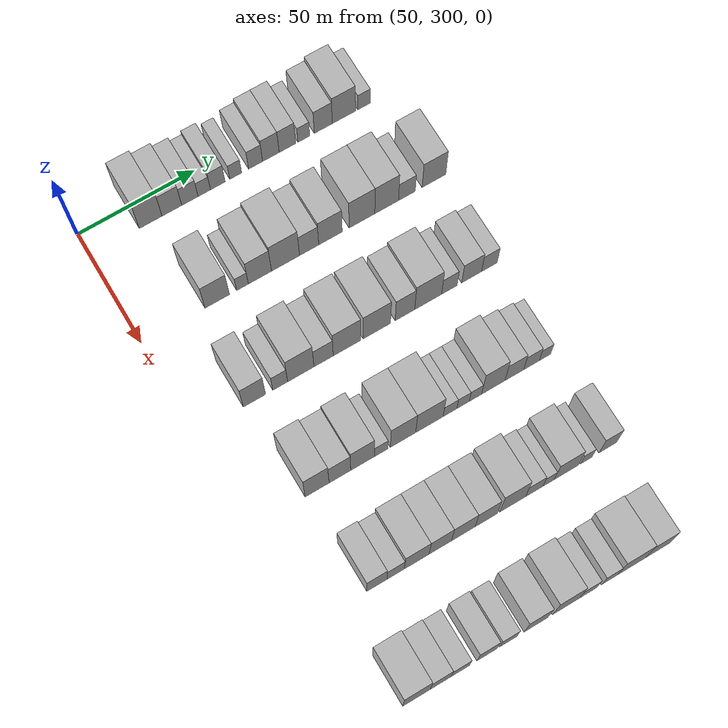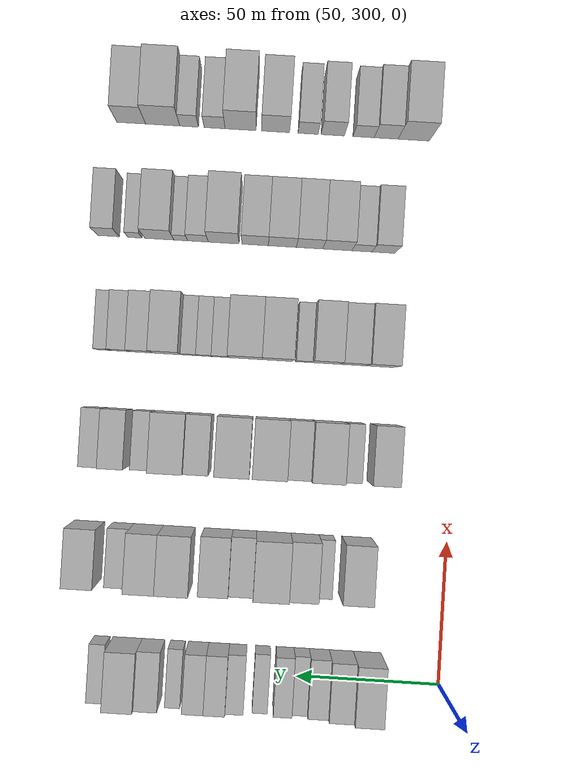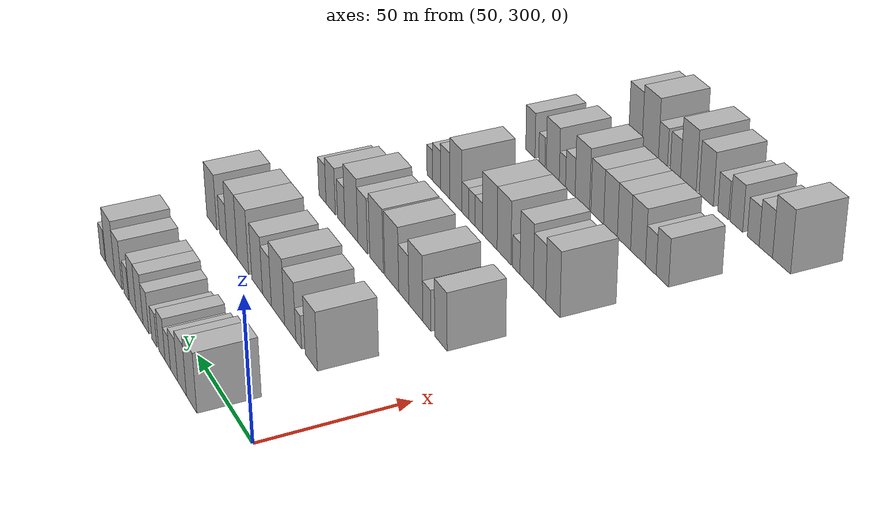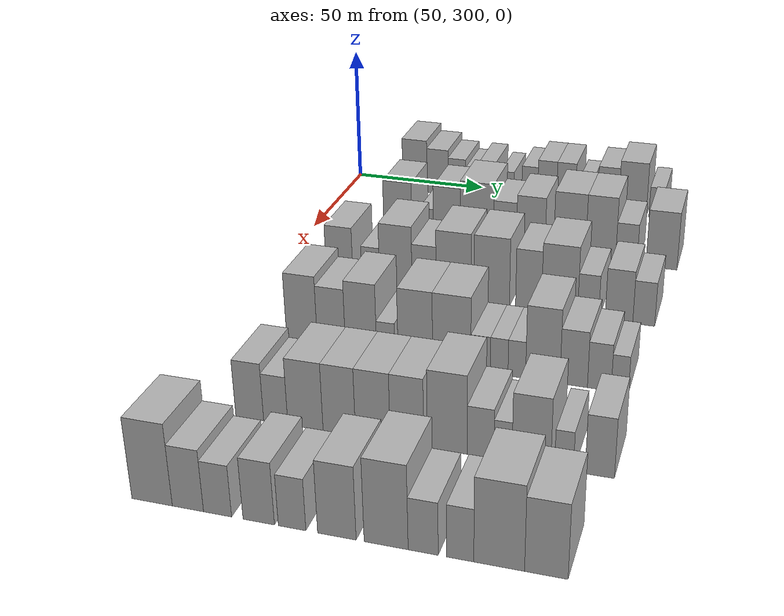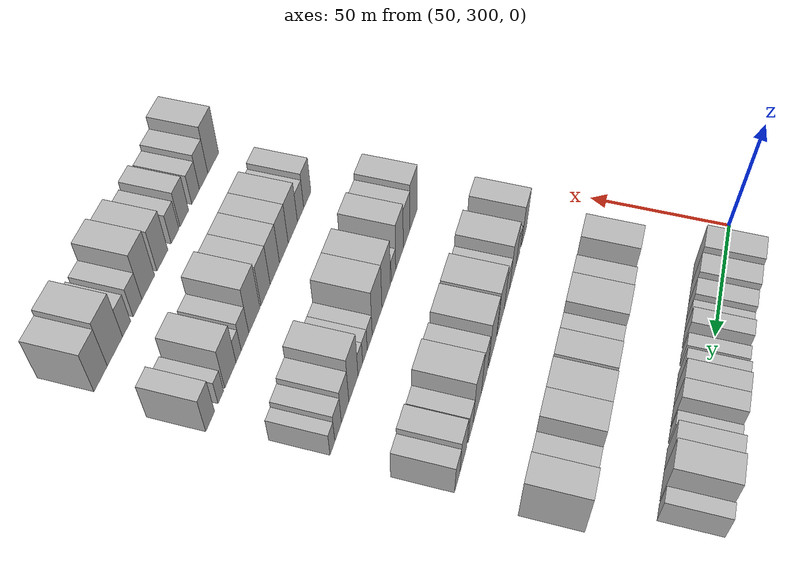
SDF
<sdf version="1.6">
 <world name="default">
  <model name="building_100">
   <static>1</static>
   <pose>50.0000 325.6708 0 0.000000 0.000000 0.000000</pose>
   <link name="link">
    <pose>0 0 10.50 0 0 0</pose>
    <collision name="collision"><geometry><box><size>20.0000 9.7156 21.0000</size></box></geometry></collision>
    <visual name="visual">
     <cast_shadows>0</cast_shadows>
     <geometry><box><size>20.0000 9.7156 21.0000</size></box></geometry>
     <material>
      <script>
       <uri>model://HANNAS_wall/materials/scripts</uri>
       <uri>model://HANNAS_wall/materials/textures</uri>
       <name>vrc/HANNAS_wall</name>
      </script>
     </material>
    </visual>
   </link>
  </model>
  <model name="building_101">
   <static>1</static>
   <pose>50.0000 334.7358 0 0.000000 0.000000 0.000000</pose>
   <link name="link">
    <pose>0 0 9.00 0 0 0</pose>
    <collision name="collision"><geometry><box><size>20.0000 8.4144 18.0000</size></box></geometry></collision>
    <visual name="visual">
     <cast_shadows>0</cast_shadows>
     <geometry><box><size>20.0000 8.4144 18.0000</size></box></geometry>
     <material>
      <script>
       <uri>model://HANNAS_wall/materials/scripts</uri>
       <uri>model://HANNAS_wall/materials/textures</uri>
       <name>vrc/HANNAS_wall</name>
      </script>
     </material>
    </visual>
   </link>
  </model>
  <model name="building_102">
   <static>1</static>
   <pose>50.0000 342.4481 0 0.000000 0.000000 0.000000</pose>
   <link name="link">
    <pose>0 0 7.50 0 0 0</pose>
    <collision name="collision"><geometry><box><size>20.0000 7.0101 15.0000</size></box></geometry></collision>
    <visual name="visual">
     <cast_shadows>0</cast_shadows>
     <geometry><box><size>20.0000 7.0101 15.0000</size></box></geometry>
     <material>
      <script>
       <uri>model://HANNAS_wall/materials/scripts</uri>
       <uri>model://HANNAS_wall/materials/textures</uri>
       <name>vrc/HANNAS_wall</name>
      </script>
     </material>
    </visual>
   </link>
  </model>
  <model name="building_103">
   <static>1</static>
   <pose>50.0000 348.6292 0 0.000000 0.000000 0.000000</pose>
   <link name="link">
    <pose>0 0 6.00 0 0 0</pose>
    <collision name="collision"><geometry><box><size>20.0000 5.3521 12.0000</size></box></geometry></collision>
    <visual name="visual">
     <cast_shadows>0</cast_shadows>
     <geometry><box><size>20.0000 5.3521 12.0000</size></box></geometry>
     <material>
      <script>
       <uri>model://HANNAS_wall/materials/scripts</uri>
       <uri>model://HANNAS_wall/materials/textures</uri>
       <name>vrc/HANNAS_wall</name>
      </script>
     </material>
    </visual>
   </link>
  </model>
  <model name="building_104">
   <static>1</static>
   <pose>50.0000 354.4547 0 0.000000 0.000000 0.000000</pose>
   <link name="link">
    <pose>0 0 7.50 0 0 0</pose>
    <collision name="collision"><geometry><box><size>20.0000 6.2988 15.0000</size></box></geometry></collision>
    <visual name="visual">
     <cast_shadows>0</cast_shadows>
     <geometry><box><size>20.0000 6.2988 15.0000</size></box></geometry>
     <material>
      <script>
       <uri>model://HANNAS_wall/materials/scripts</uri>
       <uri>model://HANNAS_wall/materials/textures</uri>
       <name>vrc/HANNAS_wall</name>
      </script>
     </material>
    </visual>
   </link>
  </model>
  <model name="building_105">
   <static>1</static>
   <pose>50.0000 362.1871 0 0.000000 0.000000 0.000000</pose>
   <link name="link">
    <pose>0 0 6.00 0 0 0</pose>
    <collision name="collision"><geometry><box><size>20.0000 5.1659 12.0000</size></box></geometry></collision>
    <visual name="visual">
     <cast_shadows>0</cast_shadows>
     <geometry><box><size>20.0000 5.1659 12.0000</size></box></geometry>
     <material>
      <script>
       <uri>model://HANNAS_wall/materials/scripts</uri>
       <uri>model://HANNAS_wall/materials/textures</uri>
       <name>vrc/HANNAS_wall</name>
      </script>
     </material>
    </visual>
   </link>
  </model>
  <model name="building_106">
   <static>1</static>
   <pose>50.0000 370.8233 0 0.000000 0.000000 0.000000</pose>
   <link name="link">
    <pose>0 0 7.50 0 0 0</pose>
    <collision name="collision"><geometry><box><size>20.0000 6.1066 15.0000</size></box></geometry></collision>
    <visual name="visual">
     <cast_shadows>0</cast_shadows>
     <geometry><box><size>20.0000 6.1066 15.0000</size></box></geometry>
     <material>
      <script>
       <uri>model://HANNAS_wall/materials/scripts</uri>
       <uri>model://HANNAS_wall/materials/textures</uri>
       <name>vrc/HANNAS_wall</name>
      </script>
     </material>
    </visual>
   </link>
  </model>
  <model name="building_107">
   <static>1</static>
   <pose>50.0000 377.4952 0 0.000000 0.000000 0.000000</pose>
   <link name="link">
    <pose>0 0 9.00 0 0 0</pose>
    <collision name="collision"><geometry><box><size>20.0000 7.2372 18.0000</size></box></geometry></collision>
    <visual name="visual">
     <cast_shadows>0</cast_shadows>
     <geometry><box><size>20.0000 7.2372 18.0000</size></box></geometry>
     <material>
      <script>
       <uri>model://HANNAS_wall/materials/scripts</uri>
       <uri>model://HANNAS_wall/materials/textures</uri>
       <name>vrc/HANNAS_wall</name>
      </script>
     </material>
    </visual>
   </link>
  </model>
  <model name="building_108">
   <static>1</static>
   <pose>50.0000 384.7166 0 0.000000 0.000000 0.000000</pose>
   <link name="link">
    <pose>0 0 9.00 0 0 0</pose>
    <collision name="collision"><geometry><box><size>20.0000 7.2054 18.0000</size></box></geometry></collision>
    <visual name="visual">
     <cast_shadows>0</cast_shadows>
     <geometry><box><size>20.0000 7.2054 18.0000</size></box></geometry>
     <material>
      <script>
       <uri>model://HANNAS_wall/materials/scripts</uri>
       <uri>model://HANNAS_wall/materials/textures</uri>
       <name>vrc/HANNAS_wall</name>
      </script>
     </material>
    </visual>
   </link>
  </model>
  <model name="building_109">
   <static>1</static>
   <pose>50.0000 391.9238 0 0.000000 0.000000 0.000000</pose>
   <link name="link">
    <pose>0 0 6.00 0 0 0</pose>
    <collision name="collision"><geometry><box><size>20.0000 5.2092 12.0000</size></box></geometry></collision>
    <visual name="visual">
     <cast_shadows>0</cast_shadows>
     <geometry><box><size>20.0000 5.2092 12.0000</size></box></geometry>
     <material>
      <script>
       <uri>model://HANNAS_wall/materials/scripts</uri>
       <uri>model://HANNAS_wall/materials/textures</uri>
       <name>vrc/HANNAS_wall</name>
      </script>
     </material>
    </visual>
   </link>
  </model>
  <model name="building_110">
   <static>1</static>
   <pose>50.0000 400.5019 0 0.000000 0.000000 0.000000</pose>
   <link name="link">
    <pose>0 0 9.00 0 0 0</pose>
    <collision name="collision"><geometry><box><size>20.0000 7.9469 18.0000</size></box></geometry></collision>
    <visual name="visual">
     <cast_shadows>0</cast_shadows>
     <geometry><box><size>20.0000 7.9469 18.0000</size></box></geometry>
     <material>
      <script>
       <uri>model://HANNAS_wall/materials/scripts</uri>
       <uri>model://HANNAS_wall/materials/textures</uri>
       <name>vrc/HANNAS_wall</name>
      </script>
     </material>
    </visual>
   </link>
  </model>
  <model name="building_111">
   <static>1</static>
   <pose>50.0000 409.6286 0 0.000000 0.000000 0.000000</pose>
   <link name="link">
    <pose>0 0 10.50 0 0 0</pose>
    <collision name="collision"><geometry><box><size>20.0000 10.3065 21.0000</size></box></geometry></collision>
    <visual name="visual">
     <cast_shadows>0</cast_shadows>
     <geometry><box><size>20.0000 10.3065 21.0000</size></box></geometry>
     <material>
      <script>
       <uri>model://HANNAS_wall/materials/scripts</uri>
       <uri>model://HANNAS_wall/materials/textures</uri>
       <name>vrc/HANNAS_wall</name>
      </script>
     </material>
    </visual>
   </link>
  </model>
  <model name="building_112">
   <static>1</static>
   <pose>50.0000 418.5462 0 0.000000 0.000000 0.000000</pose>
   <link name="link">
    <pose>0 0 6.00 0 0 0</pose>
    <collision name="collision"><geometry><box><size>20.0000 5.5287 12.0000</size></box></geometry></collision>
    <visual name="visual">
     <cast_shadows>0</cast_shadows>
     <geometry><box><size>20.0000 5.5287 12.0000</size></box></geometry>
     <material>
      <script>
       <uri>model://HANNAS_wall/materials/scripts</uri>
       <uri>model://HANNAS_wall/materials/textures</uri>
       <name>vrc/HANNAS_wall</name>
      </script>
     </material>
    </visual>
   </link>
  </model>
  <model name="building_245">
   <static>1</static>
   <pose>90.0000 331.7673 0 0.000000 0.000000 0.000000</pose>
   <link name="link">
    <pose>0 0 10.50 0 0 0</pose>
    <collision name="collision"><geometry><box><size>20.0000 10.3837 21.0000</size></box></geometry></collision>
    <visual name="visual">
     <cast_shadows>0</cast_shadows>
     <geometry><box><size>20.0000 10.3837 21.0000</size></box></geometry>
     <material>
      <script>
       <uri>model://HANNAS_wall/materials/scripts</uri>
       <uri>model://HANNAS_wall/materials/textures</uri>
       <name>vrc/HANNAS_wall</name>
      </script>
     </material>
    </visual>
   </link>
  </model>
  <model name="building_246">
   <static>1</static>
   <pose>90.0000 342.4490 0 0.000000 0.000000 0.000000</pose>
   <link name="link">
    <pose>0 0 6.00 0 0 0</pose>
    <collision name="collision"><geometry><box><size>20.0000 4.9797 12.0000</size></box></geometry></collision>
    <visual name="visual">
     <cast_shadows>0</cast_shadows>
     <geometry><box><size>20.0000 4.9797 12.0000</size></box></geometry>
     <material>
      <script>
       <uri>model://HANNAS_wall/materials/scripts</uri>
       <uri>model://HANNAS_wall/materials/textures</uri>
       <name>vrc/HANNAS_wall</name>
      </script>
     </material>
    </visual>
   </link>
  </model>
  <model name="building_247">
   <static>1</static>
   <pose>90.0000 349.8726 0 0.000000 0.000000 0.000000</pose>
   <link name="link">
    <pose>0 0 10.50 0 0 0</pose>
    <collision name="collision"><geometry><box><size>20.0000 9.8676 21.0000</size></box></geometry></collision>
    <visual name="visual">
     <cast_shadows>0</cast_shadows>
     <geometry><box><size>20.0000 9.8676 21.0000</size></box></geometry>
     <material>
      <script>
       <uri>model://HANNAS_wall/materials/scripts</uri>
       <uri>model://HANNAS_wall/materials/textures</uri>
       <name>vrc/HANNAS_wall</name>
      </script>
     </material>
    </visual>
   </link>
  </model>
  <model name="building_248">
   <static>1</static>
   <pose>90.0000 360.7991 0 0.000000 0.000000 0.000000</pose>
   <link name="link">
    <pose>0 0 12.00 0 0 0</pose>
    <collision name="collision"><geometry><box><size>20.0000 11.9853 24.0000</size></box></geometry></collision>
    <visual name="visual">
     <cast_shadows>0</cast_shadows>
     <geometry><box><size>20.0000 11.9853 24.0000</size></box></geometry>
     <material>
      <script>
       <uri>model://HANNAS_wall/materials/scripts</uri>
       <uri>model://HANNAS_wall/materials/textures</uri>
       <name>vrc/HANNAS_wall</name>
      </script>
     </material>
    </visual>
   </link>
  </model>
  <model name="building_249">
   <static>1</static>
   <pose>90.0000 370.9324 0 0.000000 0.000000 0.000000</pose>
   <link name="link">
    <pose>0 0 9.00 0 0 0</pose>
    <collision name="collision"><geometry><box><size>20.0000 8.2814 18.0000</size></box></geometry></collision>
    <visual name="visual">
     <cast_shadows>0</cast_shadows>
     <geometry><box><size>20.0000 8.2814 18.0000</size></box></geometry>
     <material>
      <script>
       <uri>model://HANNAS_wall/materials/scripts</uri>
       <uri>model://HANNAS_wall/materials/textures</uri>
       <name>vrc/HANNAS_wall</name>
      </script>
     </material>
    </visual>
   </link>
  </model>
  <model name="building_250">
   <static>1</static>
   <pose>90.0000 380.1427 0 0.000000 0.000000 0.000000</pose>
   <link name="link">
    <pose>0 0 10.50 0 0 0</pose>
    <collision name="collision"><geometry><box><size>20.0000 10.1392 21.0000</size></box></geometry></collision>
    <visual name="visual">
     <cast_shadows>0</cast_shadows>
     <geometry><box><size>20.0000 10.1392 21.0000</size></box></geometry>
     <material>
      <script>
       <uri>model://HANNAS_wall/materials/scripts</uri>
       <uri>model://HANNAS_wall/materials/textures</uri>
       <name>vrc/HANNAS_wall</name>
      </script>
     </material>
    </visual>
   </link>
  </model>
  <model name="building_251">
   <static>1</static>
   <pose>90.0000 393.7951 0 0.000000 0.000000 0.000000</pose>
   <link name="link">
    <pose>0 0 12.00 0 0 0</pose>
    <collision name="collision"><geometry><box><size>20.0000 11.1656 24.0000</size></box></geometry></collision>
    <visual name="visual">
     <cast_shadows>0</cast_shadows>
     <geometry><box><size>20.0000 11.1656 24.0000</size></box></geometry>
     <material>
      <script>
       <uri>model://HANNAS_wall/materials/scripts</uri>
       <uri>model://HANNAS_wall/materials/textures</uri>
       <name>vrc/HANNAS_wall</name>
      </script>
     </material>
    </visual>
   </link>
  </model>
  <model name="building_252">
   <static>1</static>
   <pose>90.0000 404.5613 0 0.000000 0.000000 0.000000</pose>
   <link name="link">
    <pose>0 0 12.00 0 0 0</pose>
    <collision name="collision"><geometry><box><size>20.0000 10.3667 24.0000</size></box></geometry></collision>
    <visual name="visual">
     <cast_shadows>0</cast_shadows>
     <geometry><box><size>20.0000 10.3667 24.0000</size></box></geometry>
     <material>
      <script>
       <uri>model://HANNAS_wall/materials/scripts</uri>
       <uri>model://HANNAS_wall/materials/textures</uri>
       <name>vrc/HANNAS_wall</name>
      </script>
     </material>
    </visual>
   </link>
  </model>
  <model name="building_253">
   <static>1</static>
   <pose>90.0000 413.4327 0 0.000000 0.000000 0.000000</pose>
   <link name="link">
    <pose>0 0 7.50 0 0 0</pose>
    <collision name="collision"><geometry><box><size>20.0000 7.3760 15.0000</size></box></geometry></collision>
    <visual name="visual">
     <cast_shadows>0</cast_shadows>
     <geometry><box><size>20.0000 7.3760 15.0000</size></box></geometry>
     <material>
      <script>
       <uri>model://HANNAS_wall/materials/scripts</uri>
       <uri>model://HANNAS_wall/materials/textures</uri>
       <name>vrc/HANNAS_wall</name>
      </script>
     </material>
    </visual>
   </link>
  </model>
  <model name="building_254">
   <static>1</static>
   <pose>90.0000 425.3499 0 0.000000 0.000000 0.000000</pose>
   <link name="link">
    <pose>0 0 10.50 0 0 0</pose>
    <collision name="collision"><geometry><box><size>20.0000 10.4586 21.0000</size></box></geometry></collision>
    <visual name="visual">
     <cast_shadows>0</cast_shadows>
     <geometry><box><size>20.0000 10.4586 21.0000</size></box></geometry>
     <material>
      <script>
       <uri>model://HANNAS_wall/materials/scripts</uri>
       <uri>model://HANNAS_wall/materials/textures</uri>
       <name>vrc/HANNAS_wall</name>
      </script>
     </material>
    </visual>
   </link>
  </model>
  <model name="building_381">
   <static>1</static>
   <pose>130.0000 324.7371 0 0.000000 0.000000 0.000000</pose>
   <link name="link">
    <pose>0 0 10.50 0 0 0</pose>
    <collision name="collision"><geometry><box><size>20.0000 9.2784 21.0000</size></box></geometry></collision>
    <visual name="visual">
     <cast_shadows>0</cast_shadows>
     <geometry><box><size>20.0000 9.2784 21.0000</size></box></geometry>
     <material>
      <script>
       <uri>model://HANNAS_wall/materials/scripts</uri>
       <uri>model://HANNAS_wall/materials/textures</uri>
       <name>vrc/HANNAS_wall</name>
      </script>
     </material>
    </visual>
   </link>
  </model>
  <model name="building_382">
   <static>1</static>
   <pose>130.0000 335.4908 0 0.000000 0.000000 0.000000</pose>
   <link name="link">
    <pose>0 0 7.50 0 0 0</pose>
    <collision name="collision"><geometry><box><size>20.0000 6.2291 15.0000</size></box></geometry></collision>
    <visual name="visual">
     <cast_shadows>0</cast_shadows>
     <geometry><box><size>20.0000 6.2291 15.0000</size></box></geometry>
     <material>
      <script>
       <uri>model://HANNAS_wall/materials/scripts</uri>
       <uri>model://HANNAS_wall/materials/textures</uri>
       <name>vrc/HANNAS_wall</name>
      </script>
     </material>
    </visual>
   </link>
  </model>
  <model name="building_383">
   <static>1</static>
   <pose>130.0000 344.1252 0 0.000000 0.000000 0.000000</pose>
   <link name="link">
    <pose>0 0 12.00 0 0 0</pose>
    <collision name="collision"><geometry><box><size>20.0000 11.0397 24.0000</size></box></geometry></collision>
    <visual name="visual">
     <cast_shadows>0</cast_shadows>
     <geometry><box><size>20.0000 11.0397 24.0000</size></box></geometry>
     <material>
      <script>
       <uri>model://HANNAS_wall/materials/scripts</uri>
       <uri>model://HANNAS_wall/materials/textures</uri>
       <name>vrc/HANNAS_wall</name>
      </script>
     </material>
    </visual>
   </link>
  </model>
  <model name="building_384">
   <static>1</static>
   <pose>130.0000 353.7149 0 0.000000 0.000000 0.000000</pose>
   <link name="link">
    <pose>0 0 9.00 0 0 0</pose>
    <collision name="collision"><geometry><box><size>20.0000 8.1397 18.0000</size></box></geometry></collision>
    <visual name="visual">
     <cast_shadows>0</cast_shadows>
     <geometry><box><size>20.0000 8.1397 18.0000</size></box></geometry>
     <material>
      <script>
       <uri>model://HANNAS_wall/materials/scripts</uri>
       <uri>model://HANNAS_wall/materials/textures</uri>
       <name>vrc/HANNAS_wall</name>
      </script>
     </material>
    </visual>
   </link>
  </model>
  <model name="building_385">
   <static>1</static>
   <pose>130.0000 363.6167 0 0.000000 0.000000 0.000000</pose>
   <link name="link">
    <pose>0 0 12.00 0 0 0</pose>
    <collision name="collision"><geometry><box><size>20.0000 11.6639 24.0000</size></box></geometry></collision>
    <visual name="visual">
     <cast_shadows>0</cast_shadows>
     <geometry><box><size>20.0000 11.6639 24.0000</size></box></geometry>
     <material>
      <script>
       <uri>model://HANNAS_wall/materials/scripts</uri>
       <uri>model://HANNAS_wall/materials/textures</uri>
       <name>vrc/HANNAS_wall</name>
      </script>
     </material>
    </visual>
   </link>
  </model>
  <model name="building_386">
   <static>1</static>
   <pose>130.0000 376.2737 0 0.000000 0.000000 0.000000</pose>
   <link name="link">
    <pose>0 0 12.00 0 0 0</pose>
    <collision name="collision"><geometry><box><size>20.0000 11.6502 24.0000</size></box></geometry></collision>
    <visual name="visual">
     <cast_shadows>0</cast_shadows>
     <geometry><box><size>20.0000 11.6502 24.0000</size></box></geometry>
     <material>
      <script>
       <uri>model://HANNAS_wall/materials/scripts</uri>
       <uri>model://HANNAS_wall/materials/textures</uri>
       <name>vrc/HANNAS_wall</name>
      </script>
     </material>
    </visual>
   </link>
  </model>
  <model name="building_387">
   <static>1</static>
   <pose>130.0000 388.2991 0 0.000000 0.000000 0.000000</pose>
   <link name="link">
    <pose>0 0 10.50 0 0 0</pose>
    <collision name="collision"><geometry><box><size>20.0000 8.4006 21.0000</size></box></geometry></collision>
    <visual name="visual">
     <cast_shadows>0</cast_shadows>
     <geometry><box><size>20.0000 8.4006 21.0000</size></box></geometry>
     <material>
      <script>
       <uri>model://HANNAS_wall/materials/scripts</uri>
       <uri>model://HANNAS_wall/materials/textures</uri>
       <name>vrc/HANNAS_wall</name>
      </script>
     </material>
    </visual>
   </link>
  </model>
  <model name="building_388">
   <static>1</static>
   <pose>130.0000 398.2984 0 0.000000 0.000000 0.000000</pose>
   <link name="link">
    <pose>0 0 12.00 0 0 0</pose>
    <collision name="collision"><geometry><box><size>20.0000 11.5981 24.0000</size></box></geometry></collision>
    <visual name="visual">
     <cast_shadows>0</cast_shadows>
     <geometry><box><size>20.0000 11.5981 24.0000</size></box></geometry>
     <material>
      <script>
       <uri>model://HANNAS_wall/materials/scripts</uri>
       <uri>model://HANNAS_wall/materials/textures</uri>
       <name>vrc/HANNAS_wall</name>
      </script>
     </material>
    </visual>
   </link>
  </model>
  <model name="building_389">
   <static>1</static>
   <pose>130.0000 407.4564 0 0.000000 0.000000 0.000000</pose>
   <link name="link">
    <pose>0 0 7.50 0 0 0</pose>
    <collision name="collision"><geometry><box><size>20.0000 6.7178 15.0000</size></box></geometry></collision>
    <visual name="visual">
     <cast_shadows>0</cast_shadows>
     <geometry><box><size>20.0000 6.7178 15.0000</size></box></geometry>
     <material>
      <script>
       <uri>model://HANNAS_wall/materials/scripts</uri>
       <uri>model://HANNAS_wall/materials/textures</uri>
       <name>vrc/HANNAS_wall</name>
      </script>
     </material>
    </visual>
   </link>
  </model>
  <model name="building_390">
   <static>1</static>
   <pose>130.0000 417.1506 0 0.000000 0.000000 0.000000</pose>
   <link name="link">
    <pose>0 0 9.00 0 0 0</pose>
    <collision name="collision"><geometry><box><size>20.0000 8.6705 18.0000</size></box></geometry></collision>
    <visual name="visual">
     <cast_shadows>0</cast_shadows>
     <geometry><box><size>20.0000 8.6705 18.0000</size></box></geometry>
     <material>
      <script>
       <uri>model://HANNAS_wall/materials/scripts</uri>
       <uri>model://HANNAS_wall/materials/textures</uri>
       <name>vrc/HANNAS_wall</name>
      </script>
     </material>
    </visual>
   </link>
  </model>
  <model name="building_391">
   <static>1</static>
   <pose>130.0000 424.8900 0 0.000000 0.000000 0.000000</pose>
   <link name="link">
    <pose>0 0 7.50 0 0 0</pose>
    <collision name="collision"><geometry><box><size>20.0000 6.8084 15.0000</size></box></geometry></collision>
    <visual name="visual">
     <cast_shadows>0</cast_shadows>
     <geometry><box><size>20.0000 6.8084 15.0000</size></box></geometry>
     <material>
      <script>
       <uri>model://HANNAS_wall/materials/scripts</uri>
       <uri>model://HANNAS_wall/materials/textures</uri>
       <name>vrc/HANNAS_wall</name>
      </script>
     </material>
    </visual>
   </link>
  </model>
  <model name="building_525">
   <static>1</static>
   <pose>170.0000 327.5599 0 0.000000 0.000000 0.000000</pose>
   <link name="link">
    <pose>0 0 12.00 0 0 0</pose>
    <collision name="collision"><geometry><box><size>20.0000 9.8750 24.0000</size></box></geometry></collision>
    <visual name="visual">
     <cast_shadows>0</cast_shadows>
     <geometry><box><size>20.0000 9.8750 24.0000</size></box></geometry>
     <material>
      <script>
       <uri>model://HANNAS_wall/materials/scripts</uri>
       <uri>model://HANNAS_wall/materials/textures</uri>
       <name>vrc/HANNAS_wall</name>
      </script>
     </material>
    </visual>
   </link>
  </model>
  <model name="building_526">
   <static>1</static>
   <pose>170.0000 336.9614 0 0.000000 0.000000 0.000000</pose>
   <link name="link">
    <pose>0 0 10.50 0 0 0</pose>
    <collision name="collision"><geometry><box><size>20.0000 8.9279 21.0000</size></box></geometry></collision>
    <visual name="visual">
     <cast_shadows>0</cast_shadows>
     <geometry><box><size>20.0000 8.9279 21.0000</size></box></geometry>
     <material>
      <script>
       <uri>model://HANNAS_wall/materials/scripts</uri>
       <uri>model://HANNAS_wall/materials/textures</uri>
       <name>vrc/HANNAS_wall</name>
      </script>
     </material>
    </visual>
   </link>
  </model>
  <model name="building_527">
   <static>1</static>
   <pose>170.0000 346.3277 0 0.000000 0.000000 0.000000</pose>
   <link name="link">
    <pose>0 0 12.00 0 0 0</pose>
    <collision name="collision"><geometry><box><size>20.0000 9.8047 24.0000</size></box></geometry></collision>
    <visual name="visual">
     <cast_shadows>0</cast_shadows>
     <geometry><box><size>20.0000 9.8047 24.0000</size></box></geometry>
     <material>
      <script>
       <uri>model://HANNAS_wall/materials/scripts</uri>
       <uri>model://HANNAS_wall/materials/textures</uri>
       <name>vrc/HANNAS_wall</name>
      </script>
     </material>
    </visual>
   </link>
  </model>
  <model name="building_528">
   <static>1</static>
   <pose>170.0000 354.0624 0 0.000000 0.000000 0.000000</pose>
   <link name="link">
    <pose>0 0 6.00 0 0 0</pose>
    <collision name="collision"><geometry><box><size>20.0000 5.6647 12.0000</size></box></geometry></collision>
    <visual name="visual">
     <cast_shadows>0</cast_shadows>
     <geometry><box><size>20.0000 5.6647 12.0000</size></box></geometry>
     <material>
      <script>
       <uri>model://HANNAS_wall/materials/scripts</uri>
       <uri>model://HANNAS_wall/materials/textures</uri>
       <name>vrc/HANNAS_wall</name>
      </script>
     </material>
    </visual>
   </link>
  </model>
  <model name="building_529">
   <static>1</static>
   <pose>170.0000 363.2075 0 0.000000 0.000000 0.000000</pose>
   <link name="link">
    <pose>0 0 12.00 0 0 0</pose>
    <collision name="collision"><geometry><box><size>20.0000 10.6253 24.0000</size></box></geometry></collision>
    <visual name="visual">
     <cast_shadows>0</cast_shadows>
     <geometry><box><size>20.0000 10.6253 24.0000</size></box></geometry>
     <material>
      <script>
       <uri>model://HANNAS_wall/materials/scripts</uri>
       <uri>model://HANNAS_wall/materials/textures</uri>
       <name>vrc/HANNAS_wall</name>
      </script>
     </material>
    </visual>
   </link>
  </model>
  <model name="building_530">
   <static>1</static>
   <pose>170.0000 374.3069 0 0.000000 0.000000 0.000000</pose>
   <link name="link">
    <pose>0 0 12.00 0 0 0</pose>
    <collision name="collision"><geometry><box><size>20.0000 11.5735 24.0000</size></box></geometry></collision>
    <visual name="visual">
     <cast_shadows>0</cast_shadows>
     <geometry><box><size>20.0000 11.5735 24.0000</size></box></geometry>
     <material>
      <script>
       <uri>model://HANNAS_wall/materials/scripts</uri>
       <uri>model://HANNAS_wall/materials/textures</uri>
       <name>vrc/HANNAS_wall</name>
      </script>
     </material>
    </visual>
   </link>
  </model>
  <model name="building_531">
   <static>1</static>
   <pose>170.0000 383.0103 0 0.000000 0.000000 0.000000</pose>
   <link name="link">
    <pose>0 0 6.00 0 0 0</pose>
    <collision name="collision"><geometry><box><size>20.0000 5.8332 12.0000</size></box></geometry></collision>
    <visual name="visual">
     <cast_shadows>0</cast_shadows>
     <geometry><box><size>20.0000 5.8332 12.0000</size></box></geometry>
     <material>
      <script>
       <uri>model://HANNAS_wall/materials/scripts</uri>
       <uri>model://HANNAS_wall/materials/textures</uri>
       <name>vrc/HANNAS_wall</name>
      </script>
     </material>
    </visual>
   </link>
  </model>
  <model name="building_532">
   <static>1</static>
   <pose>170.0000 388.5573 0 0.000000 0.000000 0.000000</pose>
   <link name="link">
    <pose>0 0 6.00 0 0 0</pose>
    <collision name="collision"><geometry><box><size>20.0000 5.2608 12.0000</size></box></geometry></collision>
    <visual name="visual">
     <cast_shadows>0</cast_shadows>
     <geometry><box><size>20.0000 5.2608 12.0000</size></box></geometry>
     <material>
      <script>
       <uri>model://HANNAS_wall/materials/scripts</uri>
       <uri>model://HANNAS_wall/materials/textures</uri>
       <name>vrc/HANNAS_wall</name>
      </script>
     </material>
    </visual>
   </link>
  </model>
  <model name="building_533">
   <static>1</static>
   <pose>170.0000 393.7892 0 0.000000 0.000000 0.000000</pose>
   <link name="link">
    <pose>0 0 6.00 0 0 0</pose>
    <collision name="collision"><geometry><box><size>20.0000 5.2031 12.0000</size></box></geometry></collision>
    <visual name="visual">
     <cast_shadows>0</cast_shadows>
     <geometry><box><size>20.0000 5.2031 12.0000</size></box></geometry>
     <material>
      <script>
       <uri>model://HANNAS_wall/materials/scripts</uri>
       <uri>model://HANNAS_wall/materials/textures</uri>
       <name>vrc/HANNAS_wall</name>
      </script>
     </material>
    </visual>
   </link>
  </model>
  <model name="building_534">
   <static>1</static>
   <pose>170.0000 401.4091 0 0.000000 0.000000 0.000000</pose>
   <link name="link">
    <pose>0 0 12.00 0 0 0</pose>
    <collision name="collision"><geometry><box><size>20.0000 10.0368 24.0000</size></box></geometry></collision>
    <visual name="visual">
     <cast_shadows>0</cast_shadows>
     <geometry><box><size>20.0000 10.0368 24.0000</size></box></geometry>
     <material>
      <script>
       <uri>model://HANNAS_wall/materials/scripts</uri>
       <uri>model://HANNAS_wall/materials/textures</uri>
       <name>vrc/HANNAS_wall</name>
      </script>
     </material>
    </visual>
   </link>
  </model>
  <model name="building_535">
   <static>1</static>
   <pose>170.0000 410.4089 0 0.000000 0.000000 0.000000</pose>
   <link name="link">
    <pose>0 0 9.00 0 0 0</pose>
    <collision name="collision"><geometry><box><size>20.0000 7.9628 18.0000</size></box></geometry></collision>
    <visual name="visual">
     <cast_shadows>0</cast_shadows>
     <geometry><box><size>20.0000 7.9628 18.0000</size></box></geometry>
     <material>
      <script>
       <uri>model://HANNAS_wall/materials/scripts</uri>
       <uri>model://HANNAS_wall/materials/textures</uri>
       <name>vrc/HANNAS_wall</name>
      </script>
     </material>
    </visual>
   </link>
  </model>
  <model name="building_536">
   <static>1</static>
   <pose>170.0000 417.7830 0 0.000000 0.000000 0.000000</pose>
   <link name="link">
    <pose>0 0 7.50 0 0 0</pose>
    <collision name="collision"><geometry><box><size>20.0000 6.7853 15.0000</size></box></geometry></collision>
    <visual name="visual">
     <cast_shadows>0</cast_shadows>
     <geometry><box><size>20.0000 6.7853 15.0000</size></box></geometry>
     <material>
      <script>
       <uri>model://HANNAS_wall/materials/scripts</uri>
       <uri>model://HANNAS_wall/materials/textures</uri>
       <name>vrc/HANNAS_wall</name>
      </script>
     </material>
    </visual>
   </link>
  </model>
  <model name="building_537">
   <static>1</static>
   <pose>170.0000 423.6408 0 0.000000 0.000000 0.000000</pose>
   <link name="link">
    <pose>0 0 6.00 0 0 0</pose>
    <collision name="collision"><geometry><box><size>20.0000 4.9303 12.0000</size></box></geometry></collision>
    <visual name="visual">
     <cast_shadows>0</cast_shadows>
     <geometry><box><size>20.0000 4.9303 12.0000</size></box></geometry>
     <material>
      <script>
       <uri>model://HANNAS_wall/materials/scripts</uri>
       <uri>model://HANNAS_wall/materials/textures</uri>
       <name>vrc/HANNAS_wall</name>
      </script>
     </material>
    </visual>
   </link>
  </model>
  <model name="building_670">
   <static>1</static>
   <pose>210.0000 328.3172 0 0.000000 0.000000 0.000000</pose>
   <link name="link">
    <pose>0 0 9.00 0 0 0</pose>
    <collision name="collision"><geometry><box><size>20.0000 8.2146 18.0000</size></box></geometry></collision>
    <visual name="visual">
     <cast_shadows>0</cast_shadows>
     <geometry><box><size>20.0000 8.2146 18.0000</size></box></geometry>
     <material>
      <script>
       <uri>model://HANNAS_wall/materials/scripts</uri>
       <uri>model://HANNAS_wall/materials/textures</uri>
       <name>vrc/HANNAS_wall</name>
      </script>
     </material>
    </visual>
   </link>
  </model>
  <model name="building_671">
   <static>1</static>
   <pose>210.0000 335.9651 0 0.000000 0.000000 0.000000</pose>
   <link name="link">
    <pose>0 0 7.50 0 0 0</pose>
    <collision name="collision"><geometry><box><size>20.0000 7.0812 15.0000</size></box></geometry></collision>
    <visual name="visual">
     <cast_shadows>0</cast_shadows>
     <geometry><box><size>20.0000 7.0812 15.0000</size></box></geometry>
     <material>
      <script>
       <uri>model://HANNAS_wall/materials/scripts</uri>
       <uri>model://HANNAS_wall/materials/textures</uri>
       <name>vrc/HANNAS_wall</name>
      </script>
     </material>
    </visual>
   </link>
  </model>
  <model name="building_672">
   <static>1</static>
   <pose>210.0000 344.5971 0 0.000000 0.000000 0.000000</pose>
   <link name="link">
    <pose>0 0 10.50 0 0 0</pose>
    <collision name="collision"><geometry><box><size>20.0000 10.1828 21.0000</size></box></geometry></collision>
    <visual name="visual">
     <cast_shadows>0</cast_shadows>
     <geometry><box><size>20.0000 10.1828 21.0000</size></box></geometry>
     <material>
      <script>
       <uri>model://HANNAS_wall/materials/scripts</uri>
       <uri>model://HANNAS_wall/materials/textures</uri>
       <name>vrc/HANNAS_wall</name>
      </script>
     </material>
    </visual>
   </link>
  </model>
  <model name="building_673">
   <static>1</static>
   <pose>210.0000 354.3147 0 0.000000 0.000000 0.000000</pose>
   <link name="link">
    <pose>0 0 10.50 0 0 0</pose>
    <collision name="collision"><geometry><box><size>20.0000 9.2524 21.0000</size></box></geometry></collision>
    <visual name="visual">
     <cast_shadows>0</cast_shadows>
     <geometry><box><size>20.0000 9.2524 21.0000</size></box></geometry>
     <material>
      <script>
       <uri>model://HANNAS_wall/materials/scripts</uri>
       <uri>model://HANNAS_wall/materials/textures</uri>
       <name>vrc/HANNAS_wall</name>
      </script>
     </material>
    </visual>
   </link>
  </model>
  <model name="building_674">
   <static>1</static>
   <pose>210.0000 363.8111 0 0.000000 0.000000 0.000000</pose>
   <link name="link">
    <pose>0 0 10.50 0 0 0</pose>
    <collision name="collision"><geometry><box><size>20.0000 9.7403 21.0000</size></box></geometry></collision>
    <visual name="visual">
     <cast_shadows>0</cast_shadows>
     <geometry><box><size>20.0000 9.7403 21.0000</size></box></geometry>
     <material>
      <script>
       <uri>model://HANNAS_wall/materials/scripts</uri>
       <uri>model://HANNAS_wall/materials/textures</uri>
       <name>vrc/HANNAS_wall</name>
      </script>
     </material>
    </visual>
   </link>
  </model>
  <model name="building_675">
   <static>1</static>
   <pose>210.0000 373.3290 0 0.000000 0.000000 0.000000</pose>
   <link name="link">
    <pose>0 0 10.50 0 0 0</pose>
    <collision name="collision"><geometry><box><size>20.0000 9.2954 21.0000</size></box></geometry></collision>
    <visual name="visual">
     <cast_shadows>0</cast_shadows>
     <geometry><box><size>20.0000 9.2954 21.0000</size></box></geometry>
     <material>
      <script>
       <uri>model://HANNAS_wall/materials/scripts</uri>
       <uri>model://HANNAS_wall/materials/textures</uri>
       <name>vrc/HANNAS_wall</name>
      </script>
     </material>
    </visual>
   </link>
  </model>
  <model name="building_676">
   <static>1</static>
   <pose>210.0000 384.3819 0 0.000000 0.000000 0.000000</pose>
   <link name="link">
    <pose>0 0 12.00 0 0 0</pose>
    <collision name="collision"><geometry><box><size>20.0000 10.8104 24.0000</size></box></geometry></collision>
    <visual name="visual">
     <cast_shadows>0</cast_shadows>
     <geometry><box><size>20.0000 10.8104 24.0000</size></box></geometry>
     <material>
      <script>
       <uri>model://HANNAS_wall/materials/scripts</uri>
       <uri>model://HANNAS_wall/materials/textures</uri>
       <name>vrc/HANNAS_wall</name>
      </script>
     </material>
    </visual>
   </link>
  </model>
  <model name="building_677">
   <static>1</static>
   <pose>210.0000 393.3935 0 0.000000 0.000000 0.000000</pose>
   <link name="link">
    <pose>0 0 7.50 0 0 0</pose>
    <collision name="collision"><geometry><box><size>20.0000 7.2129 15.0000</size></box></geometry></collision>
    <visual name="visual">
     <cast_shadows>0</cast_shadows>
     <geometry><box><size>20.0000 7.2129 15.0000</size></box></geometry>
     <material>
      <script>
       <uri>model://HANNAS_wall/materials/scripts</uri>
       <uri>model://HANNAS_wall/materials/textures</uri>
       <name>vrc/HANNAS_wall</name>
      </script>
     </material>
    </visual>
   </link>
  </model>
  <model name="building_678">
   <static>1</static>
   <pose>210.0000 399.4059 0 0.000000 0.000000 0.000000</pose>
   <link name="link">
    <pose>0 0 6.00 0 0 0</pose>
    <collision name="collision"><geometry><box><size>20.0000 4.8119 12.0000</size></box></geometry></collision>
    <visual name="visual">
     <cast_shadows>0</cast_shadows>
     <geometry><box><size>20.0000 4.8119 12.0000</size></box></geometry>
     <material>
      <script>
       <uri>model://HANNAS_wall/materials/scripts</uri>
       <uri>model://HANNAS_wall/materials/textures</uri>
       <name>vrc/HANNAS_wall</name>
      </script>
     </material>
    </visual>
   </link>
  </model>
  <model name="building_679">
   <static>1</static>
   <pose>210.0000 406.9215 0 0.000000 0.000000 0.000000</pose>
   <link name="link">
    <pose>0 0 10.50 0 0 0</pose>
    <collision name="collision"><geometry><box><size>20.0000 10.2194 21.0000</size></box></geometry></collision>
    <visual name="visual">
     <cast_shadows>0</cast_shadows>
     <geometry><box><size>20.0000 10.2194 21.0000</size></box></geometry>
     <material>
      <script>
       <uri>model://HANNAS_wall/materials/scripts</uri>
       <uri>model://HANNAS_wall/materials/textures</uri>
       <name>vrc/HANNAS_wall</name>
      </script>
     </material>
    </visual>
   </link>
  </model>
  <model name="building_680">
   <static>1</static>
   <pose>210.0000 415.4923 0 0.000000 0.000000 0.000000</pose>
   <link name="link">
    <pose>0 0 6.00 0 0 0</pose>
    <collision name="collision"><geometry><box><size>20.0000 4.9222 12.0000</size></box></geometry></collision>
    <visual name="visual">
     <cast_shadows>0</cast_shadows>
     <geometry><box><size>20.0000 4.9222 12.0000</size></box></geometry>
     <material>
      <script>
       <uri>model://HANNAS_wall/materials/scripts</uri>
       <uri>model://HANNAS_wall/materials/textures</uri>
       <name>vrc/HANNAS_wall</name>
      </script>
     </material>
    </visual>
   </link>
  </model>
  <model name="building_681">
   <static>1</static>
   <pose>210.0000 424.7198 0 0.000000 0.000000 0.000000</pose>
   <link name="link">
    <pose>0 0 9.00 0 0 0</pose>
    <collision name="collision"><geometry><box><size>20.0000 7.5329 18.0000</size></box></geometry></collision>
    <visual name="visual">
     <cast_shadows>0</cast_shadows>
     <geometry><box><size>20.0000 7.5329 18.0000</size></box></geometry>
     <material>
      <script>
       <uri>model://HANNAS_wall/materials/scripts</uri>
       <uri>model://HANNAS_wall/materials/textures</uri>
       <name>vrc/HANNAS_wall</name>
      </script>
     </material>
    </visual>
   </link>
  </model>
  <model name="building_811">
   <static>1</static>
   <pose>250.0000 320.1312 0 0.000000 0.000000 0.000000</pose>
   <link name="link">
    <pose>0 0 12.00 0 0 0</pose>
    <collision name="collision"><geometry><box><size>20.0000 11.0115 24.0000</size></box></geometry></collision>
    <visual name="visual">
     <cast_shadows>0</cast_shadows>
     <geometry><box><size>20.0000 11.0115 24.0000</size></box></geometry>
     <material>
      <script>
       <uri>model://HANNAS_wall/materials/scripts</uri>
       <uri>model://HANNAS_wall/materials/textures</uri>
       <name>vrc/HANNAS_wall</name>
      </script>
     </material>
    </visual>
   </link>
  </model>
  <model name="building_812">
   <static>1</static>
   <pose>250.0000 329.8246 0 0.000000 0.000000 0.000000</pose>
   <link name="link">
    <pose>0 0 9.00 0 0 0</pose>
    <collision name="collision"><geometry><box><size>20.0000 8.3754 18.0000</size></box></geometry></collision>
    <visual name="visual">
     <cast_shadows>0</cast_shadows>
     <geometry><box><size>20.0000 8.3754 18.0000</size></box></geometry>
     <material>
      <script>
       <uri>model://HANNAS_wall/materials/scripts</uri>
       <uri>model://HANNAS_wall/materials/textures</uri>
       <name>vrc/HANNAS_wall</name>
      </script>
     </material>
    </visual>
   </link>
  </model>
  <model name="building_813">
   <static>1</static>
   <pose>250.0000 337.7417 0 0.000000 0.000000 0.000000</pose>
   <link name="link">
    <pose>0 0 7.50 0 0 0</pose>
    <collision name="collision"><geometry><box><size>20.0000 7.4587 15.0000</size></box></geometry></collision>
    <visual name="visual">
     <cast_shadows>0</cast_shadows>
     <geometry><box><size>20.0000 7.4587 15.0000</size></box></geometry>
     <material>
      <script>
       <uri>model://HANNAS_wall/materials/scripts</uri>
       <uri>model://HANNAS_wall/materials/textures</uri>
       <name>vrc/HANNAS_wall</name>
      </script>
     </material>
    </visual>
   </link>
  </model>
  <model name="building_814">
   <static>1</static>
   <pose>250.0000 348.5662 0 0.000000 0.000000 0.000000</pose>
   <link name="link">
    <pose>0 0 9.00 0 0 0</pose>
    <collision name="collision"><geometry><box><size>20.0000 8.1903 18.0000</size></box></geometry></collision>
    <visual name="visual">
     <cast_shadows>0</cast_shadows>
     <geometry><box><size>20.0000 8.1903 18.0000</size></box></geometry>
     <material>
      <script>
       <uri>model://HANNAS_wall/materials/scripts</uri>
       <uri>model://HANNAS_wall/materials/textures</uri>
       <name>vrc/HANNAS_wall</name>
      </script>
     </material>
    </visual>
   </link>
  </model>
  <model name="building_815">
   <static>1</static>
   <pose>250.0000 357.2037 0 0.000000 0.000000 0.000000</pose>
   <link name="link">
    <pose>0 0 7.50 0 0 0</pose>
    <collision name="collision"><geometry><box><size>20.0000 7.0847 15.0000</size></box></geometry></collision>
    <visual name="visual">
     <cast_shadows>0</cast_shadows>
     <geometry><box><size>20.0000 7.0847 15.0000</size></box></geometry>
     <material>
      <script>
       <uri>model://HANNAS_wall/materials/scripts</uri>
       <uri>model://HANNAS_wall/materials/textures</uri>
       <name>vrc/HANNAS_wall</name>
      </script>
     </material>
    </visual>
   </link>
  </model>
  <model name="building_816">
   <static>1</static>
   <pose>250.0000 368.6038 0 0.000000 0.000000 0.000000</pose>
   <link name="link">
    <pose>0 0 10.50 0 0 0</pose>
    <collision name="collision"><geometry><box><size>20.0000 9.7155 21.0000</size></box></geometry></collision>
    <visual name="visual">
     <cast_shadows>0</cast_shadows>
     <geometry><box><size>20.0000 9.7155 21.0000</size></box></geometry>
     <material>
      <script>
       <uri>model://HANNAS_wall/materials/scripts</uri>
       <uri>model://HANNAS_wall/materials/textures</uri>
       <name>vrc/HANNAS_wall</name>
      </script>
     </material>
    </visual>
   </link>
  </model>
  <model name="building_817">
   <static>1</static>
   <pose>250.0000 380.9004 0 0.000000 0.000000 0.000000</pose>
   <link name="link">
    <pose>0 0 12.00 0 0 0</pose>
    <collision name="collision"><geometry><box><size>20.0000 10.8778 24.0000</size></box></geometry></collision>
    <visual name="visual">
     <cast_shadows>0</cast_shadows>
     <geometry><box><size>20.0000 10.8778 24.0000</size></box></geometry>
     <material>
      <script>
       <uri>model://HANNAS_wall/materials/scripts</uri>
       <uri>model://HANNAS_wall/materials/textures</uri>
       <name>vrc/HANNAS_wall</name>
      </script>
     </material>
    </visual>
   </link>
  </model>
  <model name="building_818">
   <static>1</static>
   <pose>250.0000 390.0029 0 0.000000 0.000000 0.000000</pose>
   <link name="link">
    <pose>0 0 7.50 0 0 0</pose>
    <collision name="collision"><geometry><box><size>20.0000 7.3271 15.0000</size></box></geometry></collision>
    <visual name="visual">
     <cast_shadows>0</cast_shadows>
     <geometry><box><size>20.0000 7.3271 15.0000</size></box></geometry>
     <material>
      <script>
       <uri>model://HANNAS_wall/materials/scripts</uri>
       <uri>model://HANNAS_wall/materials/textures</uri>
       <name>vrc/HANNAS_wall</name>
      </script>
     </material>
    </visual>
   </link>
  </model>
  <model name="building_819">
   <static>1</static>
   <pose>250.0000 398.9433 0 0.000000 0.000000 0.000000</pose>
   <link name="link">
    <pose>0 0 7.50 0 0 0</pose>
    <collision name="collision"><geometry><box><size>20.0000 6.5536 15.0000</size></box></geometry></collision>
    <visual name="visual">
     <cast_shadows>0</cast_shadows>
     <geometry><box><size>20.0000 6.5536 15.0000</size></box></geometry>
     <material>
      <script>
       <uri>model://HANNAS_wall/materials/scripts</uri>
       <uri>model://HANNAS_wall/materials/textures</uri>
       <name>vrc/HANNAS_wall</name>
      </script>
     </material>
    </visual>
   </link>
  </model>
  <model name="building_820">
   <static>1</static>
   <pose>250.0000 408.2142 0 0.000000 0.000000 0.000000</pose>
   <link name="link">
    <pose>0 0 12.00 0 0 0</pose>
    <collision name="collision"><geometry><box><size>20.0000 11.9884 24.0000</size></box></geometry></collision>
    <visual name="visual">
     <cast_shadows>0</cast_shadows>
     <geometry><box><size>20.0000 11.9884 24.0000</size></box></geometry>
     <material>
      <script>
       <uri>model://HANNAS_wall/materials/scripts</uri>
       <uri>model://HANNAS_wall/materials/textures</uri>
       <name>vrc/HANNAS_wall</name>
      </script>
     </material>
    </visual>
   </link>
  </model>
  <model name="building_821">
   <static>1</static>
   <pose>250.0000 419.2579 0 0.000000 0.000000 0.000000</pose>
   <link name="link">
    <pose>0 0 10.50 0 0 0</pose>
    <collision name="collision"><geometry><box><size>20.0000 10.0990 21.0000</size></box></geometry></collision>
    <visual name="visual">
     <cast_shadows>0</cast_shadows>
     <geometry><box><size>20.0000 10.0990 21.0000</size></box></geometry>
     <material>
      <script>
       <uri>model://HANNAS_wall/materials/scripts</uri>
       <uri>model://HANNAS_wall/materials/textures</uri>
       <name>vrc/HANNAS_wall</name>
      </script>
     </material>
    </visual>
   </link>
  </model>
 </world>
</sdf>
